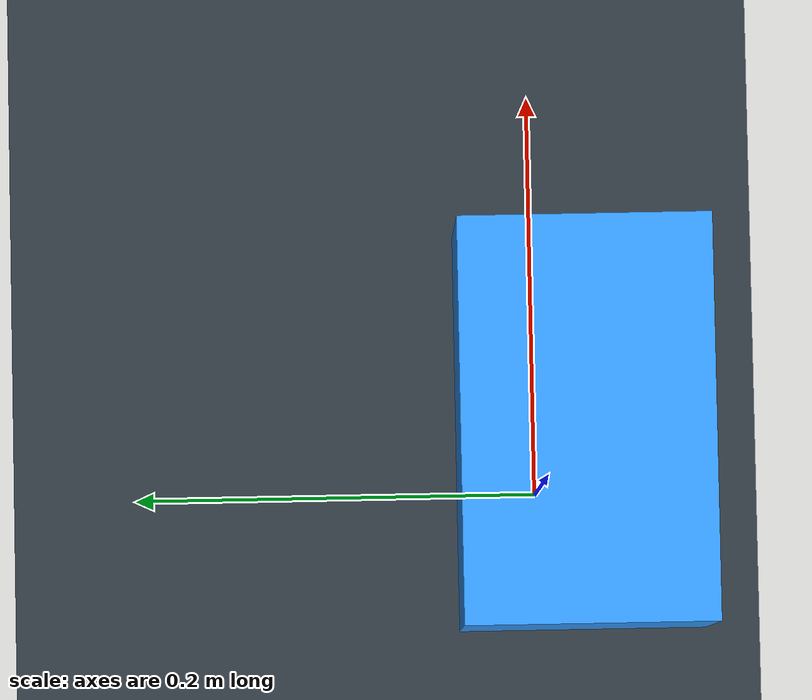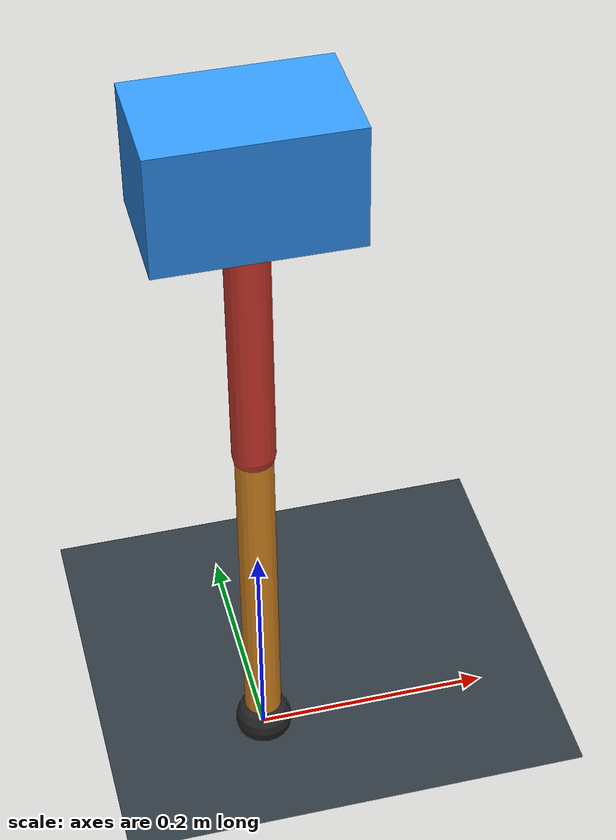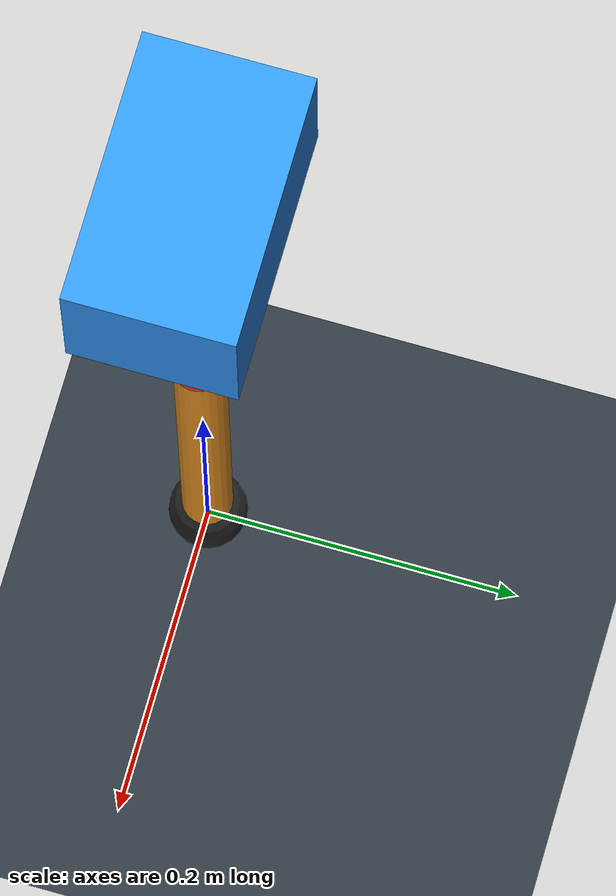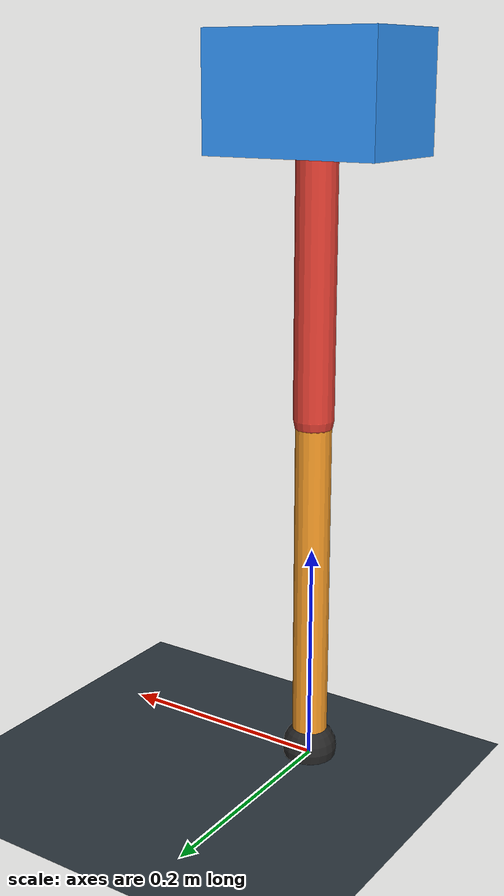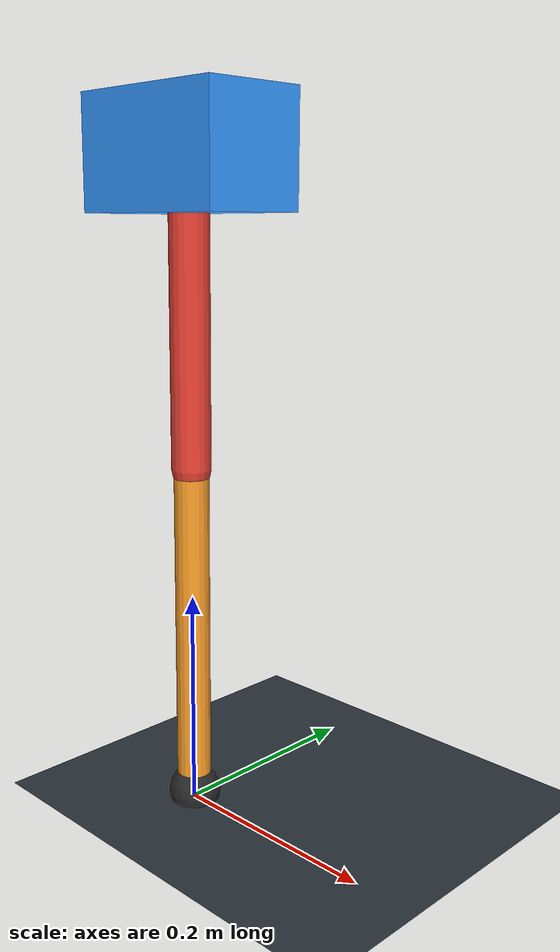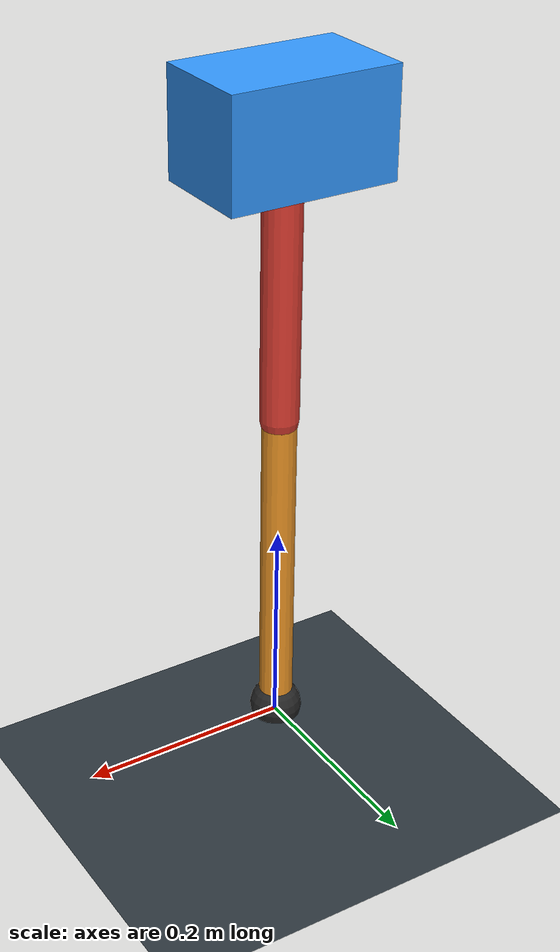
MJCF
<mujoco model="single_axis_two_bar">
  <compiler angle="radian" inertiafromgeom="true"/>
  <option timestep="0.001" integrator="implicitfast" gravity="0 0 -9.81"/>
  <default>
    <joint damping="0.08"/>
    <geom friction="1.2 0.01 0.0001" condim="3"/>
  </default>
  <worldbody>
    <geom name="floor" type="plane" size="5 5 0.1" rgba="0.18 0.22 0.25 1"/>
    <body name="carriage" pos="0 0 0.594119346189853">
      <joint name="pole_slide" type="slide" axis="0 0 1"/>
      <geom name="payload" type="box" size="0.08 0.05 0.05" mass="2.585153758158494" rgba="0.2 0.6 1 1"/>
      <body name="thigh" pos="0 0 0">
        <joint name="hip" type="hinge" axis="0 1 0"/>
        <geom name="thigh_link" type="capsule" fromto="0 0 0 0 0 -0.27286321259415014" size="0.018" mass="0.19441864454257293" rgba="0.9 0.25 0.2 1"/>
        <body name="shank" pos="0 0 -0.27286321259415014">
          <joint name="knee" type="hinge" axis="0 1 0"/>
          <geom name="shank_link" type="capsule" fromto="0 0 0 0 0 -0.31385776285930655" size="0.016" mass="0.22362780330168572" rgba="0.95 0.6 0.15 1"/>
          <geom name="foot" type="sphere" pos="0 0 -0.31385776285930655" size="0.025" mass="0.03" rgba="0.15 0.15 0.15 1"/>
          <site name="toe" pos="0 0 -0.31385776285930655" size="0.008"/>
        </body>
      </body>
    </body>
  </worldbody>
  <actuator>
    <motor name="hip_motor" joint="hip" ctrlrange="-36.12770396646594 36.12770396646594"/>
    <motor name="knee_motor" joint="knee" ctrlrange="-59.11456107587118 59.11456107587118"/>
  </actuator>
</mujoco>
